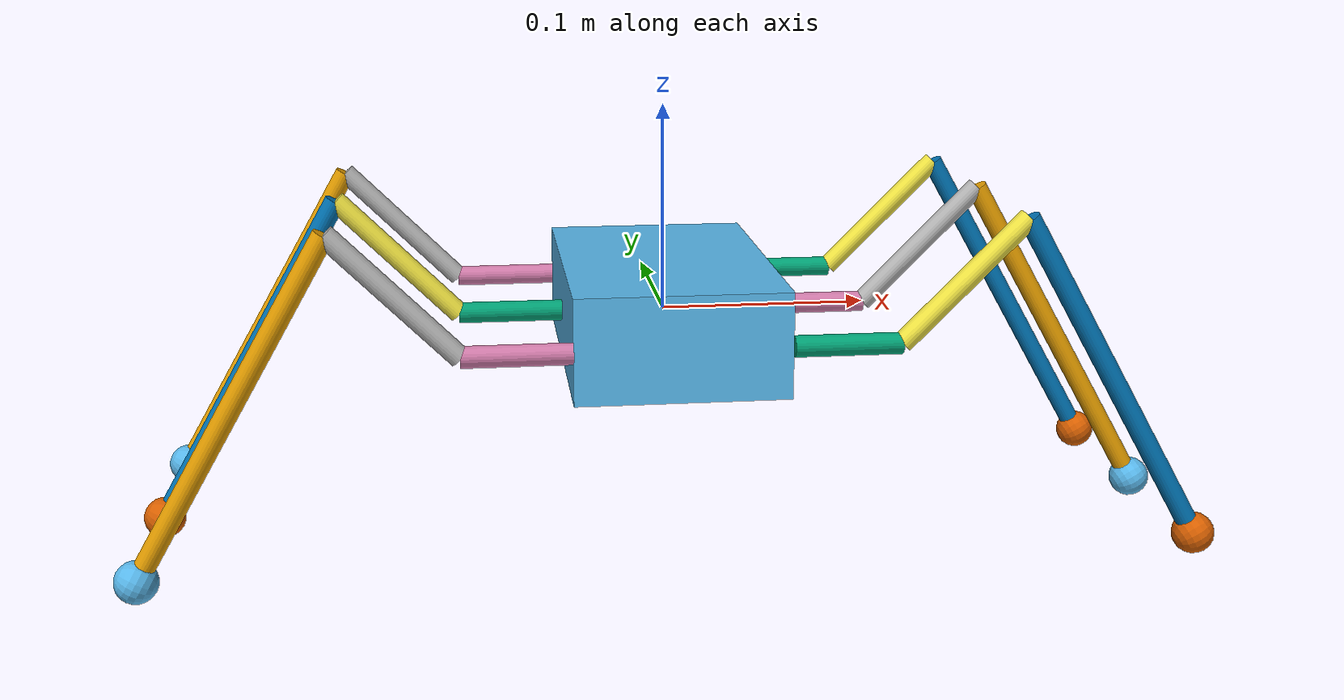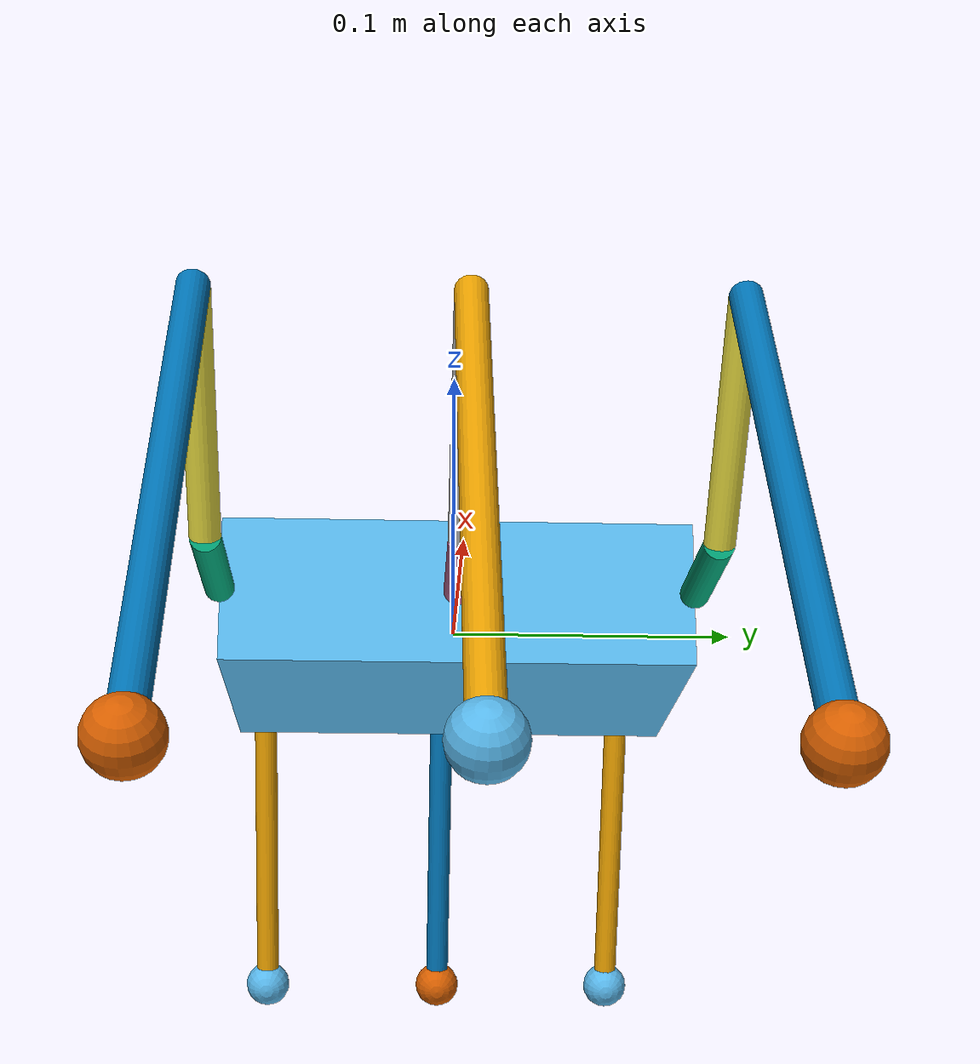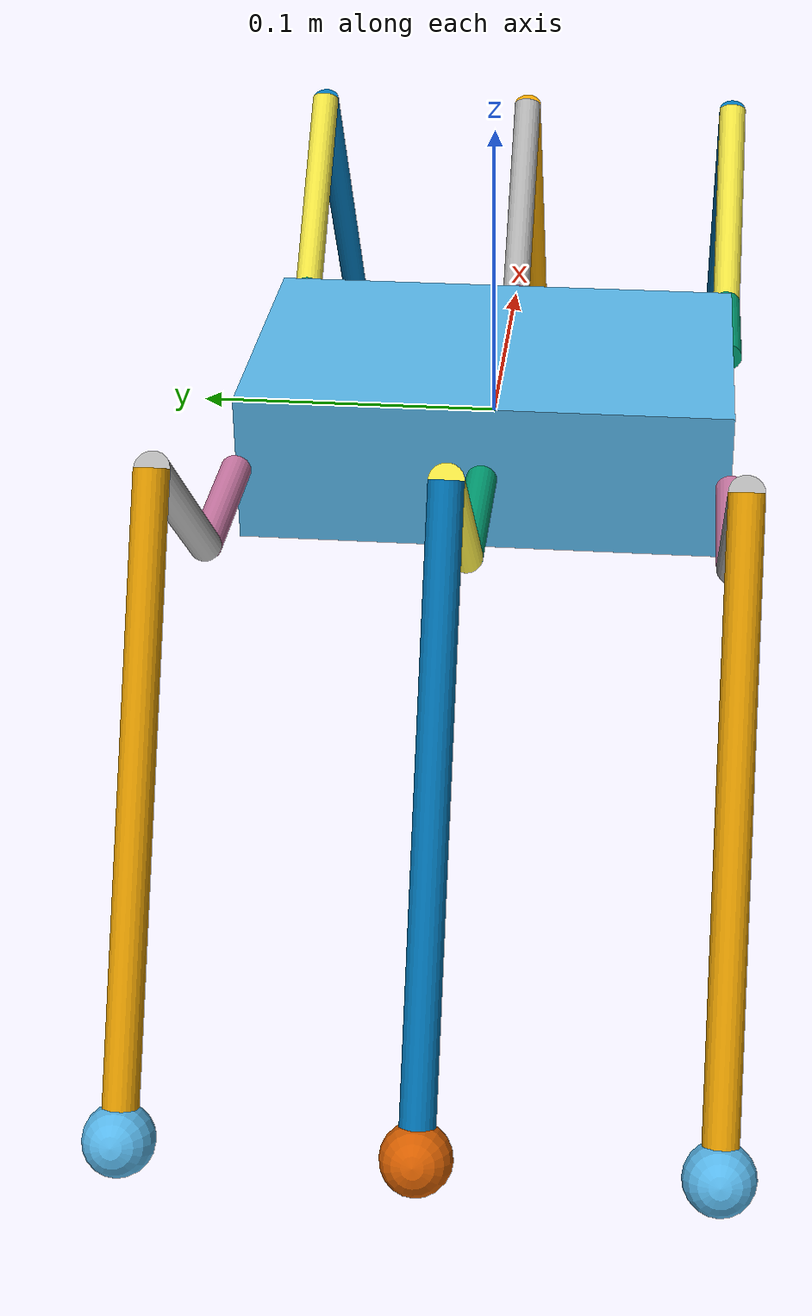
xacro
<?xml version="1.0"?>
<!--Hexapod Mobile Robot -->
<robot name="hexa" xmlns:xacro="http://ros.org/wiki/xacro">

  <!-- Constants for robot dimensions -->
  <xacro:property name="body_x" value="0.100"/>
  <xacro:property name="body_y" value="0.160"/>
  <xacro:property name="body_z" value="0.050"/>
  <xacro:property name="body_mass" value="0.150"/>

  <xacro:property name="coxa_length" value="0.050"/>
  <xacro:property name="coxa_mass" value="0.005"/>
  <xacro:property name="femur_length" value="0.080"/>
  <xacro:property name="femur_mass" value="0.008"/>
  <xacro:property name="tibia_length" value="0.180"/>
  <xacro:property name="tibia_mass" value="0.010"/>
  <xacro:property name="leg_radius" value="0.005"/>
  <xacro:property name="femur_angle" value="${45*pi/180}"/>
  <xacro:property name="tibia_angle" value="${105*pi/180}"/>
  <xacro:property name="foot_radius" value="0.010"/>

  <xacro:property name="mg90s_torque" value="${0.21582*0.8}"/> <!--stalltorque on earth is 2.2kgcm at 6v, 20% safety margin -->
  <xacro:property name="mg90s_velocity" value="${0.8*180/60/pi*0.8}"/> <!--0.08sec/60degrees at 6v, 20% safety margin -->

  <!--${tibia_length*cos(pi/2-femur_angle-tibia_angle)-femur_length*sin(femur_angle)+foot_radius/2+0.005}-->

  <!-- Import all gazebo-customisatino elements -->
  <!-- ros_control plugin -->
  <gazebo>
    <plugin name="gazebo_ros_control" filename="libgazebo_ros_control.so">
      <robotNamespace>/hexapod</robotNamespace>
      <robotSimType>gazebo_ros_control/DefaultRobotHWSim</robotSimType>
    </plugin>
  </gazebo>

  <xacro:macro name="default_inertial" params="mass">
    <inertial>
      <mass value="${mass}"/>
      <inertia ixx="1.0" ixy="0.0" ixz="0.0" iyy="1.0" iyz="0.0" izz="1.0"/>
    </inertial>
  </xacro:macro>

  <link name="dummy"/>

  <link name="base_link">
    <visual>
      <origin xyz="0 0 0" />
      <geometry>
        <box size="${body_x} ${body_y} ${body_z}"/>
      </geometry>
    </visual>
    <collision>
      <geometry>
        <box size="${body_x} ${body_y} ${body_z}"/>
      </geometry>
    </collision>
    <xacro:default_inertial mass="${body_mass}"/>
  </link>

  <joint name="dummy_joint" type="fixed">
    <parent link="dummy"/>
    <child link="base_link"/>
  </joint>

  <xacro:macro name="y_pos_leg" params="suffix">
    <xacro:if value="${suffix == 'front'}">
      <origin xyz="${reflect*body_x/2} ${body_y/2} 0" rpy="0 0 0"/>
    </xacro:if>
    <xacro:if value="${suffix == 'middle'}">
      <origin xyz="${reflect*body_x/2} 0 0" rpy="0 0 0"/>
    </xacro:if>
    <xacro:if value="${suffix == 'back'}">
      <origin xyz="${reflect*body_x/2} ${-body_y/2} 0" rpy="0 0 0"/>
    </xacro:if>
  </xacro:macro>

  <xacro:macro name="leg" params="prefix suffix reflect">

    <link name="${prefix}_${suffix}_coxa">
      <visual>
        <origin xyz="${reflect*coxa_length/2} 0 0" rpy="0 ${reflect*pi/2} 0"/>
        <geometry>
          <cylinder radius="${leg_radius}" length="${coxa_length}"/>
        </geometry>
      </visual>
      <xacro:default_inertial mass="${coxa_mass}"/>
    </link>

    <joint name="base_to_${prefix}_${suffix}_coxa" type="revolute">
      <parent link="base_link"/>
      <child link="${prefix}_${suffix}_coxa"/>
      <xacro:y_pos_leg suffix="${suffix}"/>
      <limit upper="${80/180*pi}" lower="${-80/180*pi}" effort="${mg90s_torque}" velocity="${mg90s_velocity}"/>
      <axis xyz="0 0 ${reflect}"/>
    </joint>

    <link name="${prefix}_${suffix}_femur">
      <visual>
        <origin xyz="${reflect*femur_length/2} 0 0" rpy="0 ${reflect*pi/2} 0"/>
        <geometry>
          <cylinder radius="${leg_radius}" length="${femur_length}"/>
        </geometry>
      </visual>
      <xacro:default_inertial mass="${femur_mass}"/>
    </link>

    <joint name="${prefix}_${suffix}_coxa_to_${prefix}_${suffix}_femur" type="revolute">
      <parent link="${prefix}_${suffix}_coxa"/>
      <child link="${prefix}_${suffix}_femur"/>
      <origin xyz="${reflect*coxa_length} 0 0" rpy="0 ${-femur_angle*reflect} 0"/>
      <limit upper="${80/180*pi}" lower="${-80/180*pi}" effort="${mg90s_torque}" velocity="${mg90s_velocity}"/>
      <axis xyz="0 ${reflect} 0"/>
    </joint>

    <link name="${prefix}_${suffix}_tibia">
      <visual>
        <origin xyz="${reflect*tibia_length/2} 0 0" rpy="0 ${reflect*pi/2} 0"/>
        <geometry>
          <cylinder radius="${leg_radius}" length="${tibia_length}"/>
        </geometry>
      </visual>
      <xacro:default_inertial mass="${tibia_mass}"/>
    </link>

    <joint name="${prefix}_${suffix}_femur_to_${prefix}_${suffix}_tibia" type="revolute">
      <parent link="${prefix}_${suffix}_femur"/>
      <child link="${prefix}_${suffix}_tibia"/>
      <origin xyz="${reflect*femur_length} 0 0" rpy="0 ${reflect*tibia_angle} 0"/>
      <limit upper="${80/180*pi}" lower="${-80/180*pi}" effort="${mg90s_torque}" velocity="${mg90s_velocity}"/>
      <axis xyz="0 ${reflect} 0"/>
    </joint>

    <link name="${prefix}_${suffix}_foot">
      <visual>
        <origin xyz="0 0 0" rpy="0 0 0"/>
        <geometry>
          <sphere radius="${foot_radius}"/>
        </geometry>
      </visual>
      <collision>
        <origin xyz="0 0 0" rpy="0 0 0"/>
        <geometry>
          <sphere radius="${foot_radius}"/>
        </geometry>
      </collision>
      <xacro:default_inertial mass="0.002"/>
    </link>

    <joint name="${prefix}_${suffix}_tibia_to_${prefix}_${suffix}_foot" type="fixed">
      <parent link="${prefix}_${suffix}_tibia"/>
      <child link="${prefix}_${suffix}_foot"/>
      <origin xyz="${reflect*tibia_length} 0 0" rpy="0 0 0"/>
    </joint>

    <transmission name="${prefix}_${suffix}_coxa_transmission">
      <type>transmission_interface/SimpleTransmission</type>
      <joint name="base_to_${prefix}_${suffix}_coxa">
        <hardwareInterface>hardware_interface/EffortJointInterface</hardwareInterface>
      </joint>
      <actuator name="base_to_${prefix}_${suffix}_coxa_motor">
        <hardwareInterface>hardware_interface/EffortJointInterface</hardwareInterface>
        <mechanicalReduction>1</mechanicalReduction>
      </actuator>
    </transmission>

    <transmission name="${prefix}_${suffix}_coxa_to_${prefix}_${suffix}_femur_transmission">
      <type>transmission_interface/SimpleTransmission</type>
      <joint name="${prefix}_${suffix}_coxa_to_${prefix}_${suffix}_femur">
        <hardwareInterface>hardware_interface/EffortJointInterface</hardwareInterface>
      </joint>
      <actuator name="${prefix}_${suffix}_coxa_to_${prefix}_${suffix}_femur_motor">
        <hardwareInterface>hardware_interface/EffortJointInterface</hardwareInterface>
        <mechanicalReduction>1</mechanicalReduction>
      </actuator>
    </transmission>

    <transmission name="${prefix}_${suffix}_femur_to_${prefix}_${suffix}_tibia_transmission">
      <type>transmission_interface/SimpleTransmission</type>
      <joint name="${prefix}_${suffix}_femur_to_${prefix}_${suffix}_tibia">
        <hardwareInterface>hardware_interface/EffortJointInterface</hardwareInterface>
      </joint>
      <actuator name="${prefix}_${suffix}_femur_to_${prefix}_${suffix}_tibia_motor">
        <hardwareInterface>hardware_interface/EffortJointInterface</hardwareInterface>
        <mechanicalReduction>1</mechanicalReduction>
      </actuator>
    </transmission>
  </xacro:macro>

  <xacro:leg prefix="right" suffix="front" reflect="1"/>
  <xacro:leg prefix="right" suffix="middle" reflect="1"/>
  <xacro:leg prefix="right" suffix="back" reflect="1"/>
  <xacro:leg prefix="left" suffix="front" reflect="-1"/>
  <xacro:leg prefix="left" suffix="middle" reflect="-1"/>
  <xacro:leg prefix="left" suffix="back" reflect="-1"/>
</robot>
